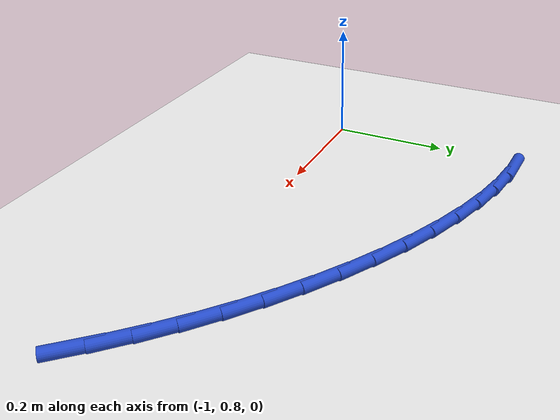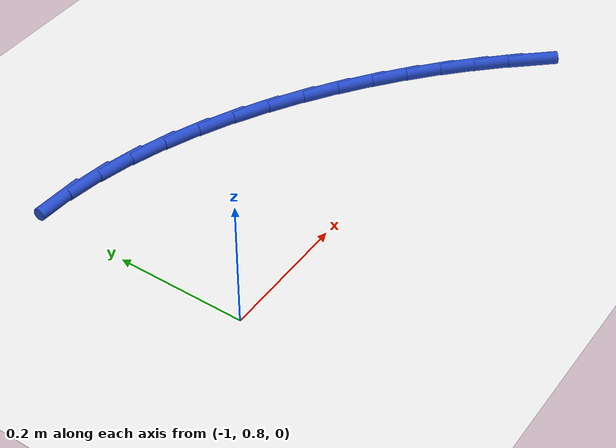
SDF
<sdf version="1.6">
 <world name="default">
  <model name="ground_plane">
   <static>1</static>
   <link name="link">
    <collision name="collision">
     <geometry><plane><normal>0 0 1</normal><size>100 100</size></plane></geometry>
     <surface><friction><ode><mu>100</mu><mu2>50</mu2></ode></friction></surface>
    </collision>
    <visual name="visual">
     <cast_shadows>0</cast_shadows>
     <geometry><plane><normal>0 0 1</normal><size>100 100</size></plane></geometry>
     <material>
      <script><uri>file://media/materials/scripts/gazebo.material</uri><name>Gazebo/WhiteGlow</name></script>
     </material>
    </visual>
   </link>
  </model>
  <model name="line">
   <link name="link_15">
    <pose>-0.2995891190605185 0.7480594599881129 0.01 0 1.57 -0.8435657884751256</pose>
    <collision name="collision">
     <geometry><cylinder><radius>0.01</radius><length>0.08</length></cylinder></geometry>
    </collision>
    <visual name="visual">
     <material>
      <script><name>Gazebo/Blue</name><uri>file://media/materials/scripts/gazebo.material</uri></script>
     </material>
     <geometry><cylinder><radius>0.01</radius><length>0.08</length></cylinder></geometry>
    </visual>
   </link>
   <link name="link_16">
    <pose>-0.3358816718220083 0.7888402490860987 0.01 0 1.57 -0.799632769921143</pose>
    <collision name="collision">
     <geometry><cylinder><radius>0.01</radius><length>0.08</length></cylinder></geometry>
    </collision>
    <visual name="visual">
     <material>
      <script><name>Gazebo/Blue</name><uri>file://media/materials/scripts/gazebo.material</uri></script>
     </material>
     <geometry><cylinder><radius>0.01</radius><length>0.08</length></cylinder></geometry>
    </visual>
   </link>
   <link name="link_17">
    <pose>-0.3741364580066369 0.8281999211712305 0.01 0 1.57 -0.7554995440715173</pose>
    <collision name="collision">
     <geometry><cylinder><radius>0.01</radius><length>0.08</length></cylinder></geometry>
    </collision>
    <visual name="visual">
     <material>
      <script><name>Gazebo/Blue</name><uri>file://media/materials/scripts/gazebo.material</uri></script>
     </material>
     <geometry><cylinder><radius>0.01</radius><length>0.08</length></cylinder></geometry>
    </visual>
   </link>
   <link name="link_18">
    <pose>-0.4143798098331108 0.8661060159553864 0.01 0 1.57 -0.7113305748421739</pose>
    <collision name="collision">
     <geometry><cylinder><radius>0.01</radius><length>0.08</length></cylinder></geometry>
    </collision>
    <visual name="visual">
     <material>
      <script><name>Gazebo/Blue</name><uri>file://media/materials/scripts/gazebo.material</uri></script>
     </material>
     <geometry><cylinder><radius>0.01</radius><length>0.08</length></cylinder></geometry>
    </visual>
   </link>
   <link name="link_19">
    <pose>-0.45663805952013614 0.9025260731504448 0.01 0 1.57 -0.6672913558920444</pose>
    <collision name="collision">
     <geometry><cylinder><radius>0.01</radius><length>0.08</length></cylinder></geometry>
    </collision>
    <visual name="visual">
     <material>
      <script><name>Gazebo/Blue</name><uri>file://media/materials/scripts/gazebo.material</uri></script>
     </material>
     <geometry><cylinder><radius>0.01</radius><length>0.08</length></cylinder></geometry>
    </visual>
   </link>
   <link name="link_20">
    <pose>-0.5009375392864194 0.9374276324682845 0.01 0 1.57 -0.6235382592823799</pose>
    <collision name="collision">
     <geometry><cylinder><radius>0.01</radius><length>0.08</length></cylinder></geometry>
    </collision>
    <visual name="visual">
     <material>
      <script><name>Gazebo/Blue</name><uri>file://media/materials/scripts/gazebo.material</uri></script>
     </material>
     <geometry><cylinder><radius>0.01</radius><length>0.08</length></cylinder></geometry>
    </visual>
   </link>
   <link name="link_21">
    <pose>-0.5473035278904874 0.9707770256672472 0.01 0 1.57 -0.5794561256401434</pose>
    <collision name="collision">
     <geometry><cylinder><radius>0.01</radius><length>0.08</length></cylinder></geometry>
    </collision>
    <visual name="visual">
     <material>
      <script><name>Gazebo/Blue</name><uri>file://media/materials/scripts/gazebo.material</uri></script>
     </material>
     <geometry><cylinder><radius>0.01</radius><length>0.08</length></cylinder></geometry>
    </visual>
   </link>
   <link name="link_22">
    <pose>-0.5956532172092026 1.0024166463317212 0.01 0 1.57 -0.5332258769973224</pose>
    <collision name="collision">
     <geometry><cylinder><radius>0.01</radius><length>0.08</length></cylinder></geometry>
    </collision>
    <visual name="visual">
     <material>
      <script><name>Gazebo/Blue</name><uri>file://media/materials/scripts/gazebo.material</uri></script>
     </material>
     <geometry><cylinder><radius>0.01</radius><length>0.08</length></cylinder></geometry>
    </visual>
   </link>
   <link name="link_23">
    <pose>-0.6457035705866289 1.0319592953485723 0.01 0 1.57 -0.4838171131902754</pose>
    <collision name="collision">
     <geometry><cylinder><radius>0.01</radius><length>0.08</length></cylinder></geometry>
    </collision>
    <visual name="visual">
     <material>
      <script><name>Gazebo/Blue</name><uri>file://media/materials/scripts/gazebo.material</uri></script>
     </material>
     <geometry><cylinder><radius>0.01</radius><length>0.08</length></cylinder></geometry>
    </visual>
   </link>
   <link name="link_24">
    <pose>-0.6971498437295944 1.0589928824719168 0.01 0 1.57 -0.43027763618657555</pose>
    <collision name="collision">
     <geometry><cylinder><radius>0.01</radius><length>0.08</length></cylinder></geometry>
    </collision>
    <visual name="visual">
     <material>
      <script><name>Gazebo/Blue</name><uri>file://media/materials/scripts/gazebo.material</uri></script>
     </material>
     <geometry><cylinder><radius>0.01</radius><length>0.08</length></cylinder></geometry>
    </visual>
   </link>
   <link name="link_25">
    <pose>-0.749687292344928 1.0831053174558727 0.01 0 1.57 -0.3715773640377178</pose>
    <collision name="collision">
     <geometry><cylinder><radius>0.01</radius><length>0.08</length></cylinder></geometry>
    </collision>
    <visual name="visual">
     <material>
      <script><name>Gazebo/Blue</name><uri>file://media/materials/scripts/gazebo.material</uri></script>
     </material>
     <geometry><cylinder><radius>0.01</radius><length>0.08</length></cylinder></geometry>
    </visual>
   </link>
   <link name="link_26">
    <pose>-0.8030111721394577 1.1038845100545567 0.01 0 1.57 -0.30659913172509246</pose>
    <collision name="collision">
     <geometry><cylinder><radius>0.01</radius><length>0.08</length></cylinder></geometry>
    </collision>
    <visual name="visual">
     <material>
      <script><name>Gazebo/Blue</name><uri>file://media/materials/scripts/gazebo.material</uri></script>
     </material>
     <geometry><cylinder><radius>0.01</radius><length>0.08</length></cylinder></geometry>
    </visual>
   </link>
   <link name="link_27">
    <pose>-0.8568167388200121 1.1209183700220866 0.01 0 1.57 -0.23415438820337126</pose>
    <collision name="collision">
     <geometry><cylinder><radius>0.01</radius><length>0.08</length></cylinder></geometry>
    </collision>
    <visual name="visual">
     <material>
      <script><name>Gazebo/Blue</name><uri>file://media/materials/scripts/gazebo.material</uri></script>
     </material>
     <geometry><cylinder><radius>0.01</radius><length>0.08</length></cylinder></geometry>
    </visual>
   </link>
   <link name="link_28">
    <pose>-0.9107992480934196 1.1337948071125792 0.01 0 1.57 -0.1530408263893018</pose>
    <collision name="collision">
     <geometry><cylinder><radius>0.01</radius><length>0.08</length></cylinder></geometry>
    </collision>
    <visual name="visual">
     <material>
      <script><name>Gazebo/Blue</name><uri>file://media/materials/scripts/gazebo.material</uri></script>
     </material>
     <geometry><cylinder><radius>0.01</radius><length>0.08</length></cylinder></geometry>
    </visual>
   </link>
   <link name="link_29">
    <pose>-0.9646539556665087 1.1421017310801522 0.01 0 1.57 -0.062165882508487334</pose>
    <collision name="collision">
     <geometry><cylinder><radius>0.01</radius><length>0.08</length></cylinder></geometry>
    </collision>
    <visual name="visual">
     <material>
      <script><name>Gazebo/Blue</name><uri>file://media/materials/scripts/gazebo.material</uri></script>
     </material>
     <geometry><cylinder><radius>0.01</radius><length>0.08</length></cylinder></geometry>
    </visual>
   </link>
  </model>
 </world>
</sdf>
